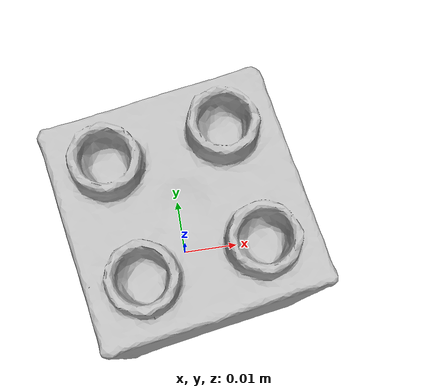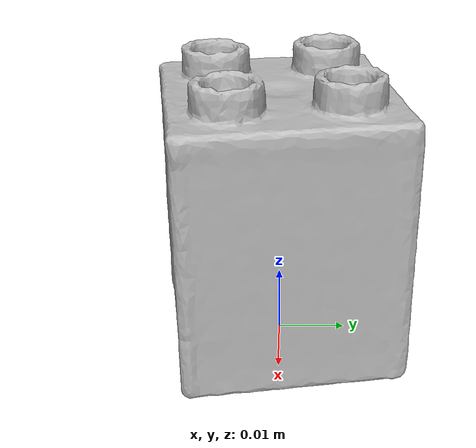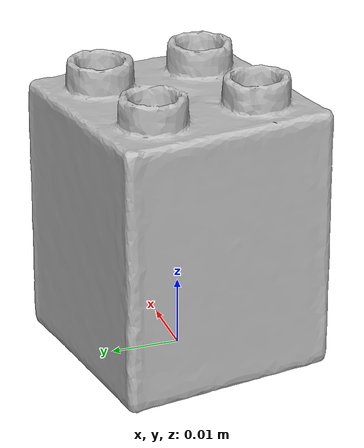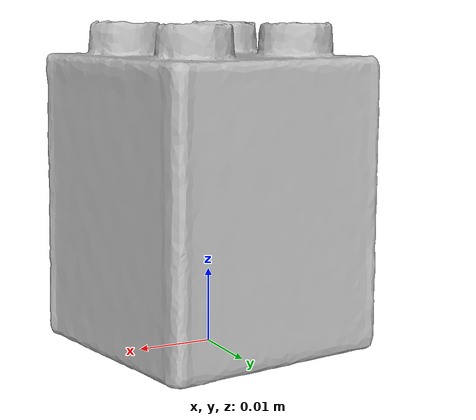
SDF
<?xml version="1.0" ?>
<sdf version='1.8'>
  <model name='ycb_073-b_lego_duplo'>
    <link name='body'>
      <inertial>
        <mass>0.0399282742205</mass>
        <pose>-0.000147953936 5.98309326e-05 0.0239789407 0 0 0</pose>
        <inertia>
          <ixx>7.35811708191e-06</ixx>
          <ixy>-8.8938345495e-10</ixy>
          <ixz>-2.49983661058e-08</ixz>
          <iyy>7.38202388745e-06</iyy>
          <iyz>1.77851921307e-08</iyz>
          <izz>7.272699461e-06</izz>
        </inertia>
      </inertial>
      <visual name='ycb_073-b_lego_duplo_visual'>
        <pose>0.020004 0.020761 0.000237 0 0 0</pose>
        <geometry>
          <mesh>
            <uri>model://ycb_073-b_lego_duplo/meshes/textured.dae</uri>
          </mesh>
        </geometry>
      </visual>
      <collision name='ycb_073-b_lego_duplo_collision'>
        <pose>0.020004 0.020761 0.000237 0 0 0</pose>
        <geometry>
          <mesh>
            <uri>model://ycb_073-b_lego_duplo/meshes/nontextured.stl</uri>
          </mesh>
        </geometry>
        <max_contacts>10</max_contacts>
        <surface>
          <contact>
            <ode>
              <kp>1e15</kp>
              <kd>1e13</kd>
            </ode>
          </contact>
        </surface>
      </collision>
    </link>
  </model>
</sdf>
